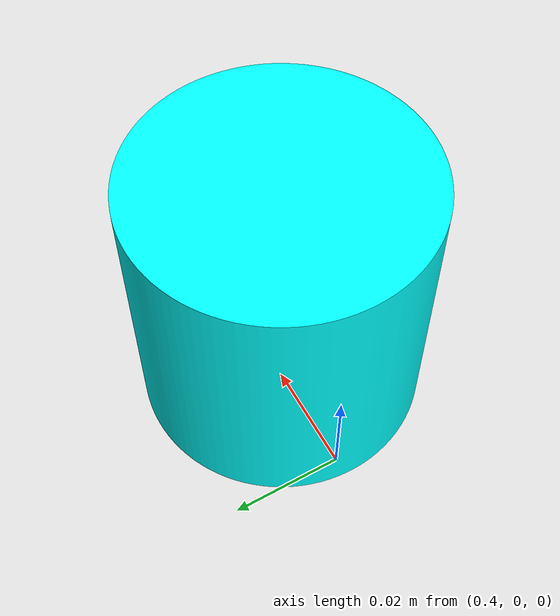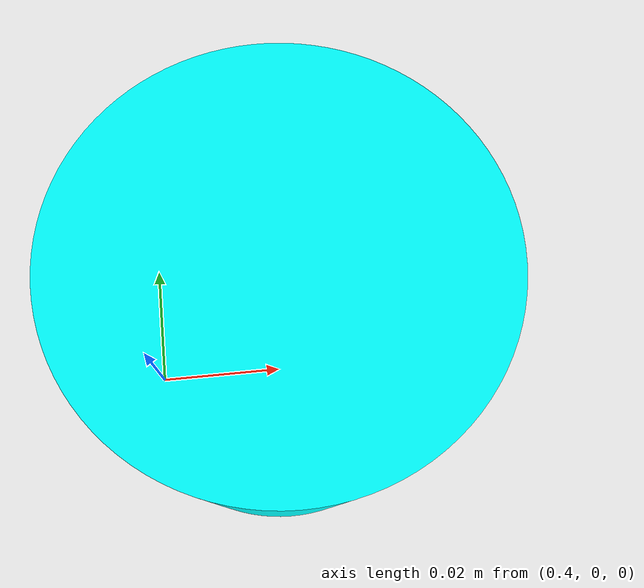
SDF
<?xml version="1.0" ?>
<sdf version="1.9">
  <world name="small_cap_world">
    <model name="small_cap">
      <static>false</static>
      <pose>0.42 0.0 0.03 0 3.14159 0</pose>
      <link name="small_cap_link">
	<collision name="small_cap_collision">
	  <geometry>
	    <mesh>
	      <uri>small_cap.obj</uri>
	      <scale>0.001 0.001 0.001</scale>
	    </mesh>
	  </geometry>
	</collision>
	<visual name="small_cap_visual">
	  <geometry>
	    <mesh>
	      <uri>small_cap.obj</uri>
	    <scale>0.001 0.001 0.001</scale>					    					  </mesh>
	  </geometry>
	  <material>
	    <ambient>0 1.0 1.0 1.0</ambient>
	  </material>
	</visual>
      </link>
    </model>
  </world>
</sdf>
